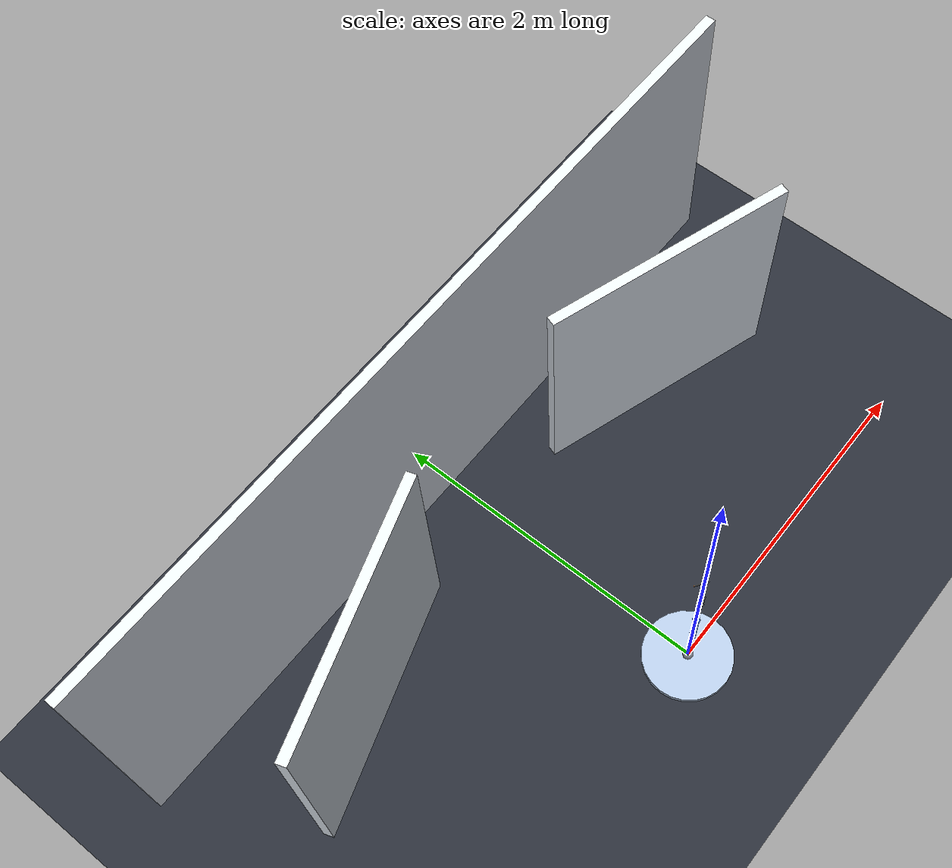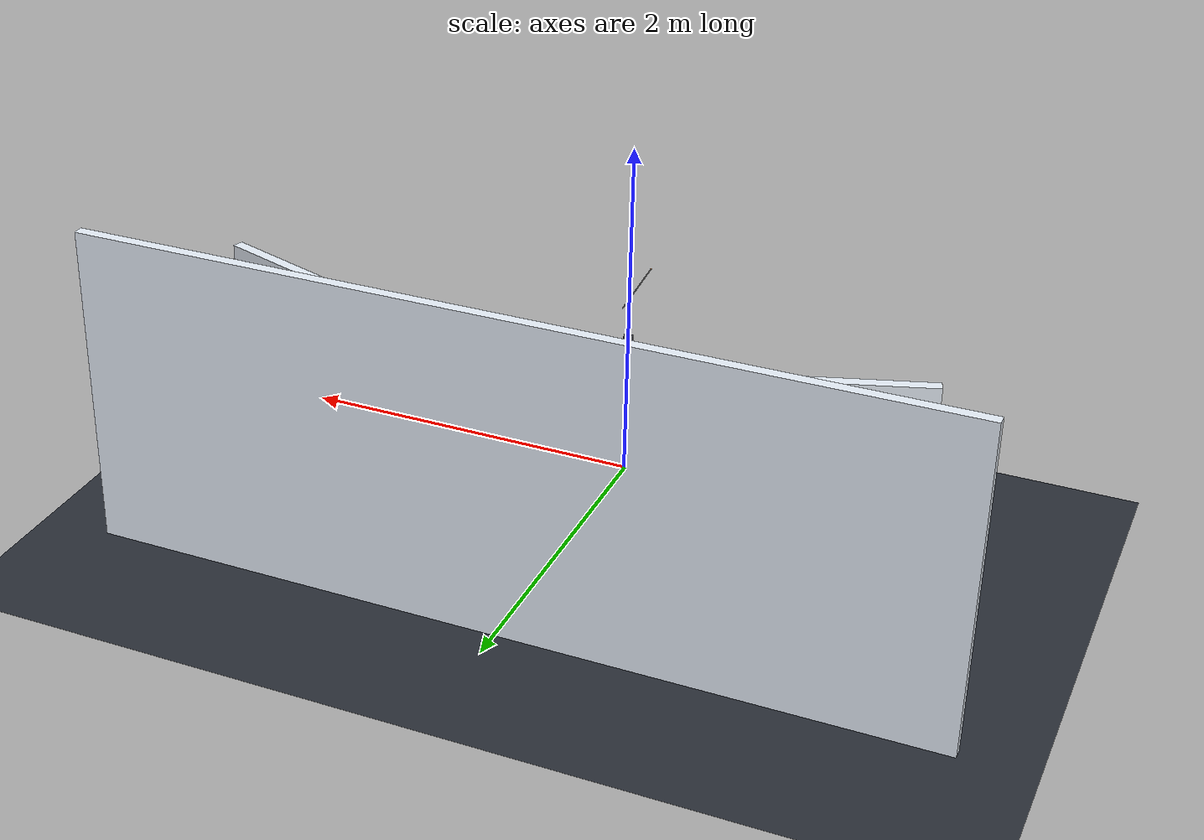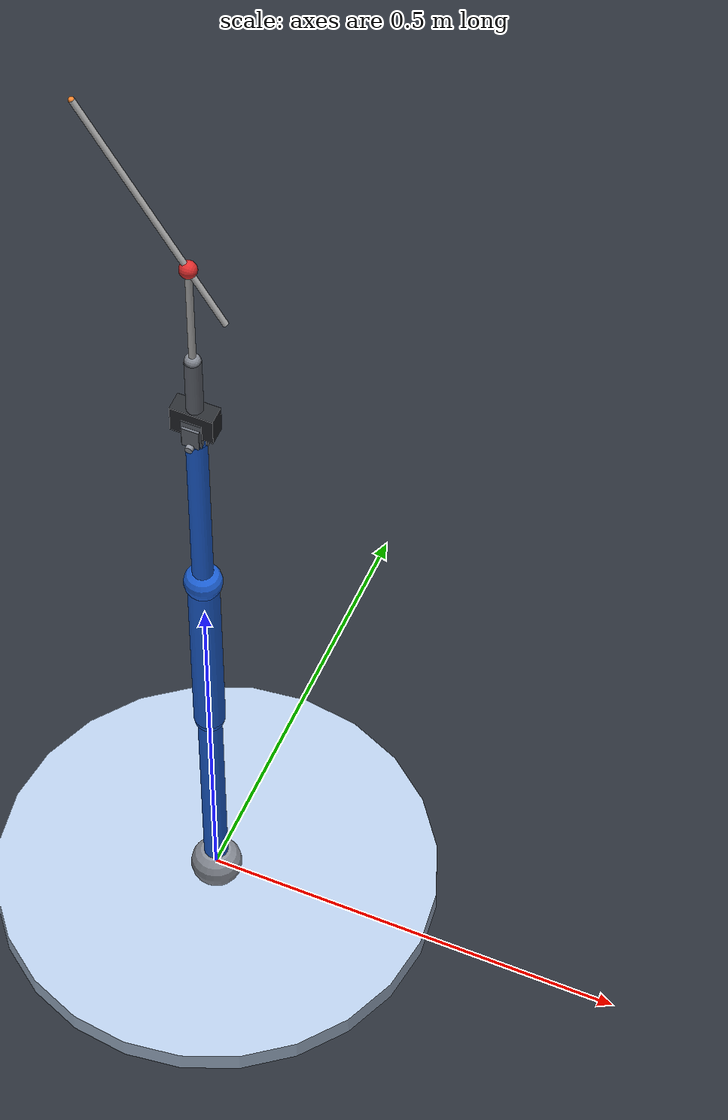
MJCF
<mujoco model="rcm_final_model_proportional_end_modeled_link">
  <compiler angle="radian" inertiafromgeom="false"/>

  <default>
    <joint limited="true"/>
    <site type="sphere"/>
  </default>

  <asset>
    <texture
      name="skybox_soft"
      type="skybox"
      builtin="gradient"
      rgb1="0.84 0.90 0.98"
      rgb2="0.98 0.99 1.00"
      width="512"
      height="3072"
    />
    <texture
      name="floor_checker"
      type="2d"
      builtin="checker"
      rgb1="0.20 0.22 0.26"
      rgb2="0.12 0.14 0.17"
      width="512"
      height="512"
      mark="edge"
      markrgb="0.30 0.34 0.40"
    />
    <material
      name="floor_grid"
      texture="floor_checker"
      texrepeat="8 8"
      texuniform="true"
      reflectance="0.06"
      shininess="0.15"
      rgba="1 1 1 1"
    />
    <material
      name="backdrop_mat"
      rgba="0.90 0.93 0.97 1"
      reflectance="0.03"
      shininess="0.08"
    />
    <material
      name="accent_mat"
      rgba="0.70 0.78 0.88 1"
      reflectance="0.02"
      shininess="0.05"
    />
  </asset>

  <visual>
    <headlight ambient="0.38 0.38 0.40" diffuse="0.72 0.72 0.70" specular="0.12 0.12 0.12"/>
    <rgba haze="0.95 0.97 1.00 1"/>
    <map znear="0.01"/>
  </visual>

  <worldbody>
    <light
      name="key_light"
      directional="true"
      pos="1.6 -1.3 2.4"
      dir="-0.5 0.4 -1.0"
      diffuse="0.95 0.94 0.90"
      specular="0.18 0.18 0.18"
      castshadow="false"
    />
    <light
      name="fill_light"
      directional="true"
      pos="-1.2 1.4 1.8"
      dir="0.4 -0.5 -0.8"
      diffuse="0.38 0.44 0.50"
      specular="0.05 0.05 0.05"
      castshadow="false"
    />
    <geom
      name="studio_floor"
      type="plane"
      pos="0 0 -0.04"
      size="2.8 2.8 0.05"
      material="floor_grid"
      contype="0"
      conaffinity="0"
    />
    <geom
      name="backdrop_wall"
      type="box"
      pos="0 1.75 0.85"
      size="2.4 0.03 0.95"
      material="backdrop_mat"
      contype="0"
      conaffinity="0"
    />
    <geom
      name="backdrop_left"
      type="box"
      pos="-1.25 1.15 0.70"
      euler="0 0 0.32"
      size="0.75 0.03 0.75"
      material="backdrop_mat"
      contype="0"
      conaffinity="0"
    />
    <geom
      name="backdrop_right"
      type="box"
      pos="1.25 1.15 0.70"
      euler="0 0 -0.32"
      size="0.75 0.03 0.75"
      material="backdrop_mat"
      contype="0"
      conaffinity="0"
    />
    <geom
      name="accent_plinth"
      type="cylinder"
      pos="0 0 -0.03"
      size="0.26 0.015"
      material="accent_mat"
      contype="0"
      conaffinity="0"
    />

    <body name="pivot_ref" pos="0 0 0.3">
      <site
        name="pivot_site"
        pos="0 0 0"
        size="0.008"
        rgba="0.92 0.16 0.16 0.35"
      />
    </body>

    <body name="base_link">
      <inertial pos="0 0 0" mass="0.35" diaginertia="0.00018 0.00018 0.00018"/>
      <geom name="base_link_geom" type="sphere" size="0.03" rgba="0.56 0.58 0.62 1"/>

      <body name="pedestal_link">
        <inertial pos="0 0 0.15" mass="0.45" diaginertia="0.00045 0.00045 0.00004"/>
        <joint
          name="q1"
          pos="0 0 0"
          axis="0 0 1"
          range="-3.14159 3.14159"
          damping="0.10"
          frictionloss="0.02"
        />
        <geom
          name="pedestal_link_geom"
          type="cylinder"
          pos="0 0 0.15"
          size="0.014 0.15"
          rgba="0.13 0.42 0.92 1"
        />
        <geom
          name="pedestal_cap_visual"
          type="sphere"
          pos="0 0 0.30"
          size="0.018"
          rgba="0.13 0.42 0.92 1"
          contype="0"
          conaffinity="0"
        />

        <body name="upper_arm_link" pos="0 0 0.30">
          <inertial pos="0 0 0.13" mass="0.80" diaginertia="0.00250 0.00250 0.00008"/>
          <joint
            name="q2"
            pos="0 0 0"
            axis="1 0 0"
            range="-1.91986 1.91986"
            damping="0.10"
            frictionloss="0.02"
          />
          <geom
            name="upper_arm_link_geom"
            type="cylinder"
            pos="0 0 0.13"
            size="0.018 0.13"
            rgba="0.13 0.42 0.92 1"
          />
          <geom
            name="upper_arm_cap_visual"
            type="sphere"
            pos="0 0 0.26"
            size="0.022"
            rgba="0.13 0.42 0.92 1"
            contype="0"
            conaffinity="0"
          />

          <body name="forearm_link" pos="0 0 0.26">
            <inertial pos="0 0 0.13" mass="0.45" diaginertia="0.00055 0.00055 0.00002"/>
            <joint
              name="q3"
              pos="0 0 0"
              axis="1 0 0"
              range="-2.44346 2.44346"
              damping="0.08"
              frictionloss="0.02"
            />
            <geom
              name="forearm_link_geom"
              type="cylinder"
              pos="0 0 0.13"
              size="0.012 0.13"
              rgba="0.13 0.42 0.92 1"
            />
            <geom
              name="forearm_cap_visual"
              type="sphere"
              pos="0 0 0.26"
              size="0.014"
              rgba="0.13 0.42 0.92 1"
              contype="0"
              conaffinity="0"
            />

            <body name="tool_local_body" pos="0 0 0.26" quat="0.5 -0.5 0.5 -0.5">
              <inertial pos="0 0 0" mass="0.005" diaginertia="0.000001 0.000001 0.000001"/>

              <body name="tool_yaw_link">
                <inertial pos="0 -0.010 0" mass="0.030" diaginertia="0.000010 0.000010 0.000008"/>
                <joint
                  name="tool_yaw"
                  pos="0 0 0"
                  axis="0 0 1"
                  range="-3.14159 3.14159"
                  damping="0.35"
                  frictionloss="0.18"
                />
                <geom
                  name="tool_yaw_pin_visual"
                  type="cylinder"
                  pos="0 0 0"
                  size="0.005 0.015"
                  rgba="0.56 0.58 0.62 1"
                  contype="0"
                  conaffinity="0"
                />
                <geom
                  name="tool_yaw_block_geom"
                  type="box"
                  pos="0 -0.014 0"
                  size="0.015 0.014 0.010"
                  rgba="0.42 0.44 0.48 1"
                />

                <body name="tool_pitch_link">
                  <inertial pos="0 -0.018 0" mass="0.040" diaginertia="0.000014 0.000012 0.000010"/>
                  <joint
                    name="tool_pitch"
                    pos="0 0 0"
                    axis="-1 0 0"
                    range="-1.57080 1.57080"
                    damping="0.35"
                    frictionloss="0.18"
                  />
                  <geom
                    name="tool_pitch_pin_visual"
                    type="cylinder"
                    pos="0 0 0"
                    quat="0.70710678 0 0.70710678 0"
                    size="0.0045 0.02"
                    rgba="0.56 0.58 0.62 1"
                    contype="0"
                    conaffinity="0"
                  />
                  <geom
                    name="tool_pitch_block_geom"
                    type="box"
                    pos="0 -0.018 0"
                    size="0.012 0.018 0.012"
                    rgba="0.42 0.44 0.48 1"
                  />

                  <body name="tool_clamp_link">
                    <inertial pos="0 -0.05 0" mass="0.100" diaginertia="0.00021 0.00021 0.00002"/>
                    <geom
                      name="tool_clamp_body_geom"
                      type="box"
                      pos="0 -0.032 0"
                      size="0.011 0.018 0.025"
                      rgba="0.16 0.17 0.19 1"
                    />
                    <geom
                      name="tool_clamp_sleeve_geom"
                      type="cylinder"
                      pos="0 -0.08 0"
                      quat="0.70710678 0.70710678 0 0"
                      size="0.0095 0.05"
                      rgba="0.42 0.44 0.48 1"
                    />
                    <geom
                      name="tool_clamp_front_visual"
                      type="sphere"
                      pos="0 -0.13 0"
                      size="0.009"
                      rgba="0.56 0.58 0.62 1"
                      contype="0"
                      conaffinity="0"
                    />
                    <site
                      name="tool_tcp"
                      pos="0 -0.13 0"
                      size="0.0035"
                      rgba="0.14 0.80 0.24 1"
                    />

                    <body name="tool_inner_link">
                      <inertial pos="0 -0.14 0" mass="0.15" diaginertia="0.00098060 0.00000120 0.00098060"/>
                      <geom
                        name="tool_inner_rod_geom"
                        type="cylinder"
                        pos="0 -0.14 0"
                        quat="0.70710678 0.70710678 0 0"
                        size="0.004 0.14"
                        rgba="0.74 0.74 0.74 1"
                      />
                      <geom
                        name="tool_tip_visual"
                        type="sphere"
                        pos="0 -0.28 0"
                        size="0.010"
                        rgba="0.88 0.18 0.18 1"
                        contype="0"
                        conaffinity="0"
                      />
                    <site
                      name="tool_tip"
                      pos="0 -0.28 0"
                      size="0.004"
                      rgba="0.88 0.18 0.18 1"
                    />

                    <body name="tool_modeled_link" pos="0 -0.28 0" euler="0.5235987755982988 0 0">
                      <inertial pos="0 -0.08 0" mass="0.03" diaginertia="0.00025609 0.00000018 0.00025609"/>
                      <geom
                        name="tool_modeled_link_geom"
                        type="cylinder"
                        pos="0 -0.08 0"
                        quat="0.70710678 0.70710678 0 0"
                        size="0.0035 0.16"
                        rgba="0.74 0.74 0.74 1"
                      />
                      <site
                        name="tool_modeled_link_tip"
                        pos="0 -0.24 0"
                        size="0.0035"
                        rgba="0.96 0.52 0.18 1"
                      />
                    </body>
                  </body>
                </body>
              </body>
            </body>
            </body>
          </body>
        </body>
      </body>
    </body>
  </worldbody>

  <actuator>
    <position
      name="q1_pos"
      joint="q1"
      kp="80"
      ctrlrange="-3.14159 3.14159"
      ctrllimited="true"
      forcerange="-8 8"
      forcelimited="true"
    />
    <position
      name="q2_pos"
      joint="q2"
      kp="80"
      ctrlrange="-1.91986 1.91986"
      ctrllimited="true"
      forcerange="-8 8"
      forcelimited="true"
    />
    <position
      name="q3_pos"
      joint="q3"
      kp="60"
      ctrlrange="-2.44346 2.44346"
      ctrllimited="true"
      forcerange="-6 6"
      forcelimited="true"
    />
  </actuator>
</mujoco>
